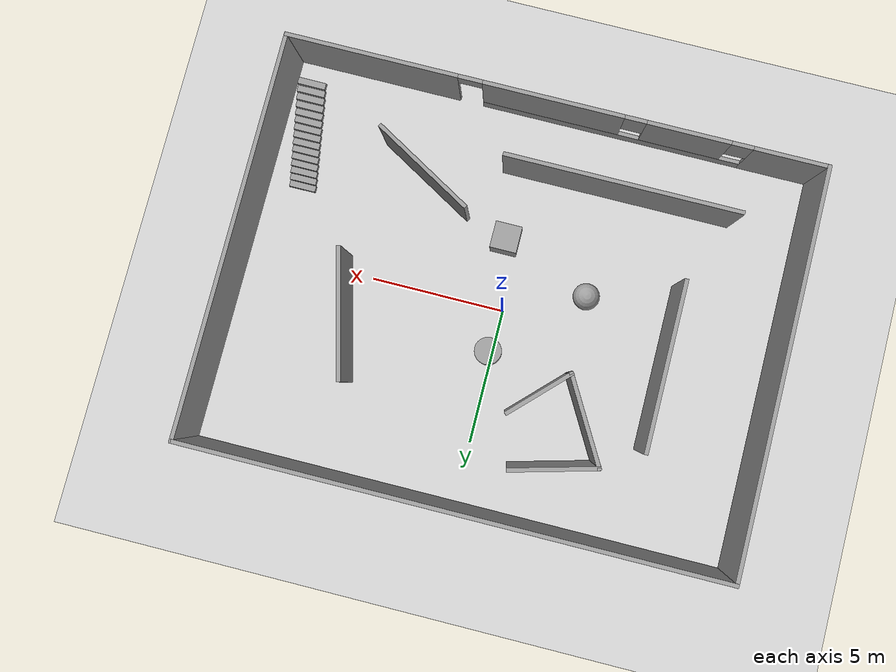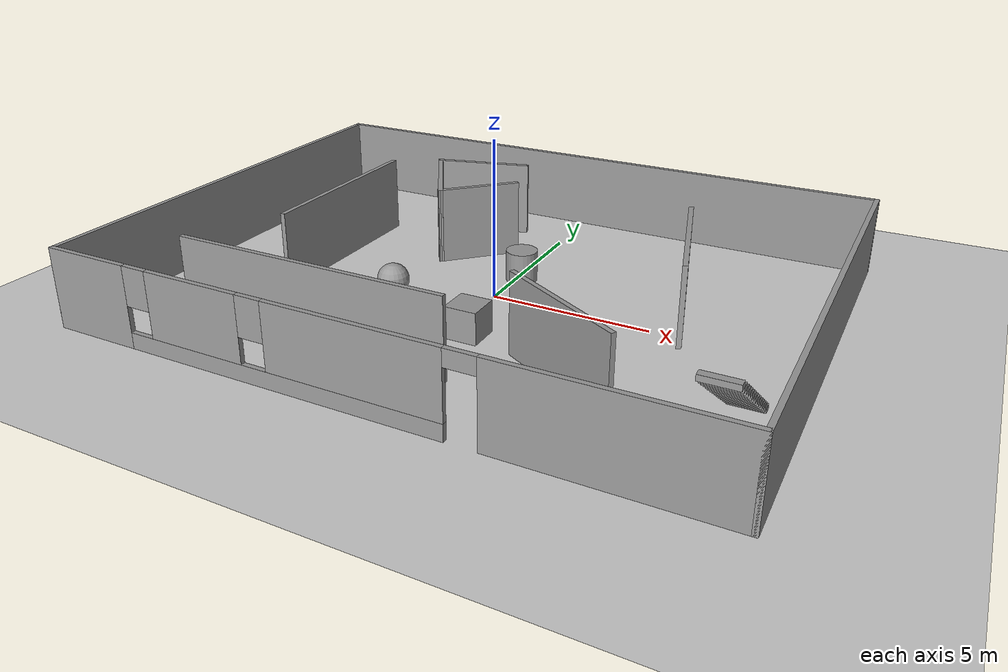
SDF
<sdf version="1.6">
 <world name="default">
  <light name="sun" type="directional">
   <pose>0 0 10 0 -0 0</pose>
   <diffuse>0.8 0.8 0.8 1</diffuse>
   <specular>0.1 0.1 0.1 1</specular>
   <attenuation>
    <range>1000</range>
    <constant>0.9</constant>
    <linear>0.01</linear>
    <quadratic>0.001</quadratic>
   </attenuation>
   <direction>-0.5 0.5 -1</direction>
  </light>
  <model name="ground_plane">
   <static>1</static>
   <link name="link">
    <collision name="collision">
     <geometry><plane><normal>0 0 1</normal><size>100 100</size></plane></geometry>
     <surface><friction><ode><mu>100</mu><mu2>50</mu2></ode></friction></surface>
    </collision>
    <visual name="visual">
     <cast_shadows>0</cast_shadows>
     <geometry><plane><normal>0 0 1</normal><size>100 100</size></plane></geometry>
     <material>
      <script><uri>file://media/materials/scripts/gazebo.material</uri><name>Gazebo/Grey</name></script>
     </material>
    </visual>
   </link>
  </model>
  <gravity>0 0 -9.8</gravity>
  <magnetic_field>6e-06 2.3e-05 -4.2e-05</magnetic_field>
  <atmosphere type="adiabatic"/>
  <physics name="default_physics" default="0" type="ode">
   <max_step_size>0.001</max_step_size>
   <real_time_factor>1</real_time_factor>
   <real_time_update_rate>1000</real_time_update_rate>
  </physics>
  <scene><ambient>0.4 0.4 0.4 1</ambient><background>0.7 0.7 0.7 1</background><shadows>1</shadows></scene>
  <spherical_coordinates>
   <surface_model>EARTH_WGS84</surface_model>
   <latitude_deg>0</latitude_deg>
   <longitude_deg>0</longitude_deg>
   <elevation>0</elevation>
   <heading_deg>0</heading_deg>
  </spherical_coordinates>
  <model name="test">
   <pose>-0.055779 -0.141461 0 0 -0 0</pose>
   <link name="Stairs_1">
    <visual name="Stairs_1_Visual_0">
     <pose>8.55558 -2.6266 0.083333 0 -0 0</pose>
     <geometry><box><size>1 0.233333 0.166667</size></box></geometry>
     <material>
      <script><uri>file://media/materials/scripts/gazebo.material</uri><name>Gazebo/Grey</name></script>
      <ambient>1 1 1 1</ambient>
     </material>
    </visual>
    <collision name="Stairs_1_Collision_0">
     <geometry><box><size>1 0.233333 0.166667</size></box></geometry>
     <pose>8.55558 -2.6266 0.083333 0 -0 0</pose>
    </collision>
    <visual name="Stairs_1_Visual_1">
     <pose>8.55558 -2.85994 0.25 0 -0 0</pose>
     <geometry><box><size>1 0.233333 0.166667</size></box></geometry>
     <material>
      <script><uri>file://media/materials/scripts/gazebo.material</uri><name>Gazebo/Grey</name></script>
      <ambient>1 1 1 1</ambient>
     </material>
    </visual>
    <collision name="Stairs_1_Collision_1">
     <geometry><box><size>1 0.233333 0.166667</size></box></geometry>
     <pose>8.55558 -2.85994 0.25 0 -0 0</pose>
    </collision>
    <visual name="Stairs_1_Visual_2">
     <pose>8.55558 -3.09327 0.416667 0 -0 0</pose>
     <geometry><box><size>1 0.233333 0.166667</size></box></geometry>
     <material>
      <script><uri>file://media/materials/scripts/gazebo.material</uri><name>Gazebo/Grey</name></script>
      <ambient>1 1 1 1</ambient>
     </material>
    </visual>
    <collision name="Stairs_1_Collision_2">
     <geometry><box><size>1 0.233333 0.166667</size></box></geometry>
     <pose>8.55558 -3.09327 0.416667 0 -0 0</pose>
    </collision>
    <visual name="Stairs_1_Visual_3">
     <pose>8.55558 -3.3266 0.583333 0 -0 0</pose>
     <geometry><box><size>1 0.233333 0.166667</size></box></geometry>
     <material>
      <script><uri>file://media/materials/scripts/gazebo.material</uri><name>Gazebo/Grey</name></script>
      <ambient>1 1 1 1</ambient>
     </material>
    </visual>
    <collision name="Stairs_1_Collision_3">
     <geometry><box><size>1 0.233333 0.166667</size></box></geometry>
     <pose>8.55558 -3.3266 0.583333 0 -0 0</pose>
    </collision>
    <visual name="Stairs_1_Visual_4">
     <pose>8.55558 -3.55994 0.75 0 -0 0</pose>
     <geometry><box><size>1 0.233333 0.166667</size></box></geometry>
     <material>
      <script><uri>file://media/materials/scripts/gazebo.material</uri><name>Gazebo/Grey</name></script>
      <ambient>1 1 1 1</ambient>
     </material>
    </visual>
    <collision name="Stairs_1_Collision_4">
     <geometry><box><size>1 0.233333 0.166667</size></box></geometry>
     <pose>8.55558 -3.55994 0.75 0 -0 0</pose>
    </collision>
    <visual name="Stairs_1_Visual_5">
     <pose>8.55558 -3.79327 0.916667 0 -0 0</pose>
     <geometry><box><size>1 0.233333 0.166667</size></box></geometry>
     <material>
      <script><uri>file://media/materials/scripts/gazebo.material</uri><name>Gazebo/Grey</name></script>
      <ambient>1 1 1 1</ambient>
     </material>
    </visual>
    <collision name="Stairs_1_Collision_5">
     <geometry><box><size>1 0.233333 0.166667</size></box></geometry>
     <pose>8.55558 -3.79327 0.916667 0 -0 0</pose>
    </collision>
    <visual name="Stairs_1_Visual_6">
     <pose>8.55558 -4.0266 1.08333 0 -0 0</pose>
     <geometry><box><size>1 0.233333 0.166667</size></box></geometry>
     <material>
      <script><uri>file://media/materials/scripts/gazebo.material</uri><name>Gazebo/Grey</name></script>
      <ambient>1 1 1 1</ambient>
     </material>
    </visual>
    <collision name="Stairs_1_Collision_6">
     <geometry><box><size>1 0.233333 0.166667</size></box></geometry>
     <pose>8.55558 -4.0266 1.08333 0 -0 0</pose>
    </collision>
    <visual name="Stairs_1_Visual_7">
     <pose>8.55558 -4.25994 1.25 0 -0 0</pose>
     <geometry><box><size>1 0.233333 0.166667</size></box></geometry>
     <material>
      <script><uri>file://media/materials/scripts/gazebo.material</uri><name>Gazebo/Grey</name></script>
      <ambient>1 1 1 1</ambient>
     </material>
    </visual>
    <collision name="Stairs_1_Collision_7">
     <geometry><box><size>1 0.233333 0.166667</size></box></geometry>
     <pose>8.55558 -4.25994 1.25 0 -0 0</pose>
    </collision>
    <visual name="Stairs_1_Visual_8">
     <pose>8.55558 -4.49327 1.41667 0 -0 0</pose>
     <geometry><box><size>1 0.233333 0.166667</size></box></geometry>
     <material>
      <script><uri>file://media/materials/scripts/gazebo.material</uri><name>Gazebo/Grey</name></script>
      <ambient>1 1 1 1</ambient>
     </material>
    </visual>
    <collision name="Stairs_1_Collision_8">
     <geometry><box><size>1 0.233333 0.166667</size></box></geometry>
     <pose>8.55558 -4.49327 1.41667 0 -0 0</pose>
    </collision>
    <visual name="Stairs_1_Visual_9">
     <pose>8.55558 -4.7266 1.58333 0 -0 0</pose>
     <geometry><box><size>1 0.233333 0.166667</size></box></geometry>
     <material>
      <script><uri>file://media/materials/scripts/gazebo.material</uri><name>Gazebo/Grey</name></script>
      <ambient>1 1 1 1</ambient>
     </material>
    </visual>
    <collision name="Stairs_1_Collision_9">
     <geometry><box><size>1 0.233333 0.166667</size></box></geometry>
     <pose>8.55558 -4.7266 1.58333 0 -0 0</pose>
    </collision>
    <visual name="Stairs_1_Visual_10">
     <pose>8.55558 -4.95994 1.75 0 -0 0</pose>
     <geometry><box><size>1 0.233333 0.166667</size></box></geometry>
     <material>
      <script><uri>file://media/materials/scripts/gazebo.material</uri><name>Gazebo/Grey</name></script>
      <ambient>1 1 1 1</ambient>
     </material>
    </visual>
    <collision name="Stairs_1_Collision_10">
     <geometry><box><size>1 0.233333 0.166667</size></box></geometry>
     <pose>8.55558 -4.95994 1.75 0 -0 0</pose>
    </collision>
    <visual name="Stairs_1_Visual_11">
     <pose>8.55558 -5.19327 1.91667 0 -0 0</pose>
     <geometry><box><size>1 0.233333 0.166667</size></box></geometry>
     <material>
      <script><uri>file://media/materials/scripts/gazebo.material</uri><name>Gazebo/Grey</name></script>
      <ambient>1 1 1 1</ambient>
     </material>
    </visual>
    <collision name="Stairs_1_Collision_11">
     <geometry><box><size>1 0.233333 0.166667</size></box></geometry>
     <pose>8.55558 -5.19327 1.91667 0 -0 0</pose>
    </collision>
    <visual name="Stairs_1_Visual_12">
     <pose>8.55558 -5.4266 2.08333 0 -0 0</pose>
     <geometry><box><size>1 0.233333 0.166667</size></box></geometry>
     <material>
      <script><uri>file://media/materials/scripts/gazebo.material</uri><name>Gazebo/Grey</name></script>
      <ambient>1 1 1 1</ambient>
     </material>
    </visual>
    <collision name="Stairs_1_Collision_12">
     <geometry><box><size>1 0.233333 0.166667</size></box></geometry>
     <pose>8.55558 -5.4266 2.08333 0 -0 0</pose>
    </collision>
    <visual name="Stairs_1_Visual_13">
     <pose>8.55558 -5.65994 2.25 0 -0 0</pose>
     <geometry><box><size>1 0.233333 0.166667</size></box></geometry>
     <material>
      <script><uri>file://media/materials/scripts/gazebo.material</uri><name>Gazebo/Grey</name></script>
      <ambient>1 1 1 1</ambient>
     </material>
    </visual>
    <collision name="Stairs_1_Collision_13">
     <geometry><box><size>1 0.233333 0.166667</size></box></geometry>
     <pose>8.55558 -5.65994 2.25 0 -0 0</pose>
    </collision>
    <visual name="Stairs_1_Visual_14">
     <pose>8.55558 -5.89327 2.41667 0 -0 0</pose>
     <geometry><box><size>1 0.233333 0.166667</size></box></geometry>
     <material>
      <script><uri>file://media/materials/scripts/gazebo.material</uri><name>Gazebo/Grey</name></script>
      <ambient>1 1 1 1</ambient>
     </material>
    </visual>
    <collision name="Stairs_1_Collision_14">
     <geometry><box><size>1 0.233333 0.166667</size></box></geometry>
     <pose>8.55558 -5.89327 2.41667 0 -0 0</pose>
    </collision>
   </link>
   <link name="Wall_11">
    <collision name="Wall_11_Collision">
     <geometry><box><size>0.15 0.15 2.5</size></box></geometry>
     <pose>0 0 1.25 0 -0 0</pose>
    </collision>
    <visual name="Wall_11_Visual">
     <pose>0 0 1.25 0 -0 0</pose>
     <geometry><box><size>0.15 0.15 2.5</size></box></geometry>
     <material>
      <script><uri>file://media/materials/scripts/gazebo.material</uri><name>Gazebo/Grey</name></script>
      <ambient>1 1 1 1</ambient>
     </material>
    </visual>
    <pose>-9.925 -7.425 0 0 -0 0</pose>
   </link>
   <link name="Wall_24">
    <pose>0 -7.425 0 0 -0 0</pose>
    <visual name="Wall_24_Visual_0">
     <pose>-8.60036 0 1.25 0 -0 0</pose>
     <geometry><box><size>2.79928 0.15 2.5</size></box></geometry>
     <material>
      <script><uri>file://media/materials/scripts/gazebo.material</uri><name>Gazebo/Grey</name></script>
      <ambient>1 1 1 1</ambient>
     </material>
    </visual>
    <collision name="Wall_24_Collision_0">
     <geometry><box><size>2.79928 0.15 2.5</size></box></geometry>
     <pose>-8.60036 0 1.25 0 -0 0</pose>
    </collision>
    <visual name="Wall_24_Visual_1">
     <pose>6.79555 0 1.25 0 -0 0</pose>
     <geometry><box><size>6.40889 0.15 2.5</size></box></geometry>
     <material>
      <script><uri>file://media/materials/scripts/gazebo.material</uri><name>Gazebo/Grey</name></script>
      <ambient>1 1 1 1</ambient>
     </material>
    </visual>
    <collision name="Wall_24_Collision_1">
     <geometry><box><size>6.40889 0.15 2.5</size></box></geometry>
     <pose>6.79555 0 1.25 0 -0 0</pose>
    </collision>
    <visual name="Wall_24_Visual_2">
     <pose>-2.25481 0 0.25 0 -0 0</pose>
     <geometry><box><size>9.89182 0.15 0.5</size></box></geometry>
     <material>
      <script><uri>file://media/materials/scripts/gazebo.material</uri><name>Gazebo/Grey</name></script>
      <ambient>1 1 1 1</ambient>
     </material>
    </visual>
    <collision name="Wall_24_Collision_2">
     <geometry><box><size>9.89182 0.15 0.5</size></box></geometry>
     <pose>-2.25481 0 0.25 0 -0 0</pose>
    </collision>
    <visual name="Wall_24_Visual_3">
     <pose>-4.85824 0 1.5 0 -0 0</pose>
     <geometry><box><size>3.08496 0.15 2</size></box></geometry>
     <material>
      <script><uri>file://media/materials/scripts/gazebo.material</uri><name>Gazebo/Grey</name></script>
      <ambient>1 1 1 1</ambient>
     </material>
    </visual>
    <collision name="Wall_24_Collision_3">
     <geometry><box><size>3.08496 0.15 2</size></box></geometry>
     <pose>-4.85824 0 1.5 0 -0 0</pose>
    </collision>
    <visual name="Wall_24_Visual_4">
     <pose>0.087674 0 1.5 0 -0 0</pose>
     <geometry><box><size>5.20686 0.15 2</size></box></geometry>
     <material>
      <script><uri>file://media/materials/scripts/gazebo.material</uri><name>Gazebo/Grey</name></script>
      <ambient>1 1 1 1</ambient>
     </material>
    </visual>
    <collision name="Wall_24_Collision_4">
     <geometry><box><size>5.20686 0.15 2</size></box></geometry>
     <pose>0.087674 0 1.5 0 -0 0</pose>
    </collision>
    <visual name="Wall_24_Visual_5">
     <pose>-6.80072 0 1.9 0 -0 0</pose>
     <geometry><box><size>0.8 0.15 1.2</size></box></geometry>
     <material>
      <script><uri>file://media/materials/scripts/gazebo.material</uri><name>Gazebo/Grey</name></script>
      <ambient>1 1 1 1</ambient>
     </material>
    </visual>
    <collision name="Wall_24_Collision_5">
     <geometry><box><size>0.8 0.15 1.2</size></box></geometry>
     <pose>-6.80072 0 1.9 0 -0 0</pose>
    </collision>
    <visual name="Wall_24_Visual_6">
     <pose>-2.91576 0 1.9 0 -0 0</pose>
     <geometry><box><size>0.8 0.15 1.2</size></box></geometry>
     <material>
      <script><uri>file://media/materials/scripts/gazebo.material</uri><name>Gazebo/Grey</name></script>
      <ambient>1 1 1 1</ambient>
     </material>
    </visual>
    <collision name="Wall_24_Collision_6">
     <geometry><box><size>0.8 0.15 1.2</size></box></geometry>
     <pose>-2.91576 0 1.9 0 -0 0</pose>
    </collision>
    <visual name="Wall_24_Visual_7">
     <pose>3.14111 0 2.25 0 -0 0</pose>
     <geometry><box><size>0.9 0.15 0.5</size></box></geometry>
     <material>
      <script><uri>file://media/materials/scripts/gazebo.material</uri><name>Gazebo/Grey</name></script>
      <ambient>1 1 1 1</ambient>
     </material>
    </visual>
    <collision name="Wall_24_Collision_7">
     <geometry><box><size>0.9 0.15 0.5</size></box></geometry>
     <pose>3.14111 0 2.25 0 -0 0</pose>
    </collision>
   </link>
   <link name="Wall_25">
    <collision name="Wall_25_Collision">
     <geometry><box><size>15 0.15 2.5</size></box></geometry>
     <pose>0 0 1.25 0 -0 0</pose>
    </collision>
    <visual name="Wall_25_Visual">
     <pose>0 0 1.25 0 -0 0</pose>
     <geometry><box><size>15 0.15 2.5</size></box></geometry>
     <material>
      <script><uri>file://media/materials/scripts/gazebo.material</uri><name>Gazebo/Grey</name></script>
      <ambient>1 1 1 1</ambient>
     </material>
    </visual>
    <pose>9.925 0 0 0 -0 1.5708</pose>
   </link>
   <link name="Wall_26">
    <collision name="Wall_26_Collision">
     <geometry><box><size>20 0.15 2.5</size></box></geometry>
     <pose>0 0 1.25 0 -0 0</pose>
    </collision>
    <visual name="Wall_26_Visual">
     <pose>0 0 1.25 0 -0 0</pose>
     <geometry><box><size>20 0.15 2.5</size></box></geometry>
     <material>
      <script><uri>file://media/materials/scripts/gazebo.material</uri><name>Gazebo/Grey</name></script>
      <ambient>1 1 1 1</ambient>
     </material>
    </visual>
    <pose>0 7.425 0 0 -0 3.14159</pose>
   </link>
   <link name="Wall_27">
    <collision name="Wall_27_Collision">
     <geometry><box><size>15 0.15 2.5</size></box></geometry>
     <pose>0 0 1.25 0 -0 0</pose>
    </collision>
    <visual name="Wall_27_Visual">
     <pose>0 0 1.25 0 -0 0</pose>
     <geometry><box><size>15 0.15 2.5</size></box></geometry>
     <material>
      <script><uri>file://media/materials/scripts/gazebo.material</uri><name>Gazebo/Grey</name></script>
      <ambient>1 1 1 1</ambient>
     </material>
    </visual>
    <pose>-9.925 0 0 0 0 -1.5708</pose>
   </link>
   <link name="Wall_29">
    <collision name="Wall_29_Collision">
     <geometry><box><size>6.25 0.15 2.5</size></box></geometry>
     <pose>0 0 1.25 0 -0 0</pose>
    </collision>
    <visual name="Wall_29_Visual">
     <pose>0 0 1.25 0 -0 0</pose>
     <geometry><box><size>6.25 0.15 2.5</size></box></geometry>
     <material>
      <script><uri>file://media/materials/scripts/gazebo.material</uri><name>Gazebo/Grey</name></script>
      <ambient>1 1 1 1</ambient>
     </material>
    </visual>
    <pose>-5.94419 0.796473 0 0 0 -1.5708</pose>
   </link>
   <link name="Wall_31">
    <collision name="Wall_31_Collision">
     <geometry><box><size>8.75 0.15 2.5</size></box></geometry>
     <pose>0 0 1.25 0 -0 0</pose>
    </collision>
    <visual name="Wall_31_Visual">
     <pose>0 0 1.25 0 -0 0</pose>
     <geometry><box><size>8.75 0.15 2.5</size></box></geometry>
     <material>
      <script><uri>file://media/materials/scripts/gazebo.material</uri><name>Gazebo/Grey</name></script>
      <ambient>1 1 1 1</ambient>
     </material>
    </visual>
    <pose>-3.02075 -5.08587 0 0 -0 0</pose>
   </link>
   <link name="Wall_35">
    <collision name="Wall_35_Collision">
     <geometry><box><size>4.75 0.15 2.5</size></box></geometry>
     <pose>0 0 1.25 0 -0 0</pose>
    </collision>
    <visual name="Wall_35_Visual">
     <pose>0 0 1.25 0 -0 0</pose>
     <geometry><box><size>4.75 0.15 2.5</size></box></geometry>
     <material>
      <script><uri>file://media/materials/scripts/gazebo.material</uri><name>Gazebo/Grey</name></script>
      <ambient>1 1 1 1</ambient>
     </material>
    </visual>
    <pose>5.51532 1.78966 0 0 0 -1.309</pose>
   </link>
   <link name="Wall_37">
    <collision name="Wall_37_Collision">
     <geometry><box><size>2.75 0.15 2.5</size></box></geometry>
     <pose>0 0 1.25 0 -0 0</pose>
    </collision>
    <visual name="Wall_37_Visual">
     <pose>0 0 1.25 0 -0 0</pose>
     <geometry><box><size>2.75 0.15 2.5</size></box></geometry>
     <material>
      <script><uri>file://media/materials/scripts/gazebo.material</uri><name>Gazebo/Grey</name></script>
      <ambient>1 1 1 1</ambient>
     </material>
    </visual>
    <pose>-1.90781 2.77428 0 0 0 -2.35619</pose>
   </link>
   <link name="Wall_38">
    <collision name="Wall_38_Collision">
     <geometry><box><size>3.5 0.15 2.5</size></box></geometry>
     <pose>0 0 1.25 0 -0 0</pose>
    </collision>
    <visual name="Wall_38_Visual">
     <pose>0 0 1.25 0 -0 0</pose>
     <geometry><box><size>3.5 0.15 2.5</size></box></geometry>
     <material>
      <script><uri>file://media/materials/scripts/gazebo.material</uri><name>Gazebo/Grey</name></script>
      <ambient>1 1 1 1</ambient>
     </material>
    </visual>
    <pose>-3.66455 3.30564 0 0 -0 2.0944</pose>
   </link>
   <link name="Wall_39">
    <collision name="Wall_39_Collision">
     <geometry><box><size>3.25 0.15 2.5</size></box></geometry>
     <pose>0 0 1.25 0 -0 0</pose>
    </collision>
    <visual name="Wall_39_Visual">
     <pose>0 0 1.25 0 -0 0</pose>
     <geometry><box><size>3.25 0.15 2.5</size></box></geometry>
     <material>
      <script><uri>file://media/materials/scripts/gazebo.material</uri><name>Gazebo/Grey</name></script>
      <ambient>1 1 1 1</ambient>
     </material>
    </visual>
    <pose>-3.00487 5.1574 0 0 -0 0.261799</pose>
   </link>
   <link name="Wall_41">
    <collision name="Wall_41_Collision">
     <geometry><box><size>4.25 0.15 2.5</size></box></geometry>
     <pose>0 0 1.25 0 -0 0</pose>
    </collision>
    <visual name="Wall_41_Visual">
     <pose>0 0 1.25 0 -0 0</pose>
     <geometry><box><size>4.25 0.15 2.5</size></box></geometry>
     <material>
      <script><uri>file://media/materials/scripts/gazebo.material</uri><name>Gazebo/Grey</name></script>
      <ambient>1 1 1 1</ambient>
     </material>
    </visual>
    <pose>3.99651 -3.9691 0 0 -0 2.61799</pose>
   </link>
   <static>1</static>
  </model>
  <model name="unit_sphere_0">
   <pose>-2.87322 -1.24439 0.5 0 -0 0</pose>
   <link name="link">
    <inertial>
     <mass>1</mass>
     <inertia><ixx>0.1</ixx><ixy>0</ixy><ixz>0</ixz><iyy>0.1</iyy><iyz>0</iyz><izz>0.1</izz></inertia>
    </inertial>
    <collision name="collision"><geometry><sphere><radius>0.5</radius></sphere></geometry></collision>
    <visual name="visual">
     <geometry><sphere><radius>0.5</radius></sphere></geometry>
     <material>
      <script><name>Gazebo/Grey</name><uri>file://media/materials/scripts/gazebo.material</uri></script>
     </material>
    </visual>
   </link>
  </model>
  <model name="unit_cylinder_0">
   <pose>0.153965 1.59965 0.499993 -3e-06 -4e-06 -0</pose>
   <link name="link">
    <inertial>
     <mass>1</mass>
     <inertia><ixx>0.145833</ixx><ixy>0</ixy><ixz>0</ixz><iyy>0.145833</iyy><iyz>0</iyz><izz>0.125</izz></inertia>
    </inertial>
    <collision name="collision">
     <geometry><cylinder><radius>0.5</radius><length>1</length></cylinder></geometry>
    </collision>
    <visual name="visual">
     <geometry><cylinder><radius>0.5</radius><length>1</length></cylinder></geometry>
     <material>
      <script><name>Gazebo/Grey</name><uri>file://media/materials/scripts/gazebo.material</uri></script>
     </material>
    </visual>
   </link>
  </model>
  <model name="unit_box_0">
   <pose>0.532161 -2.61382 0.5 0 -0 0</pose>
   <link name="link">
    <inertial>
     <mass>1</mass>
     <inertia>
      <ixx>0.166667</ixx>
      <ixy>0</ixy>
      <ixz>0</ixz>
      <iyy>0.166667</iyy>
      <iyz>0</iyz>
      <izz>0.166667</izz>
     </inertia>
    </inertial>
    <collision name="collision"><geometry><box><size>1 1 1</size></box></geometry></collision>
    <visual name="visual">
     <geometry><box><size>1 1 1</size></box></geometry>
     <material>
      <script><name>Gazebo/Grey</name><uri>file://media/materials/scripts/gazebo.material</uri></script>
     </material>
    </visual>
   </link>
  </model>
 </world>
</sdf>
